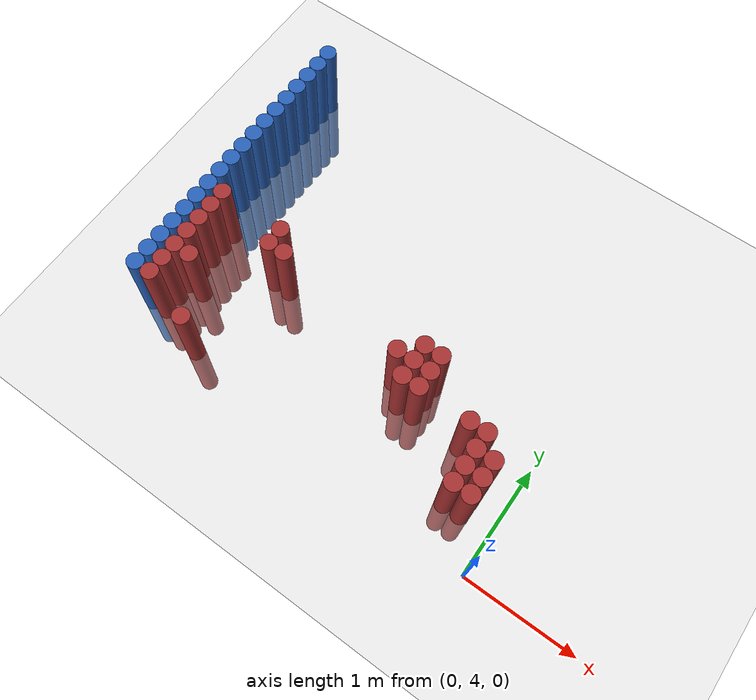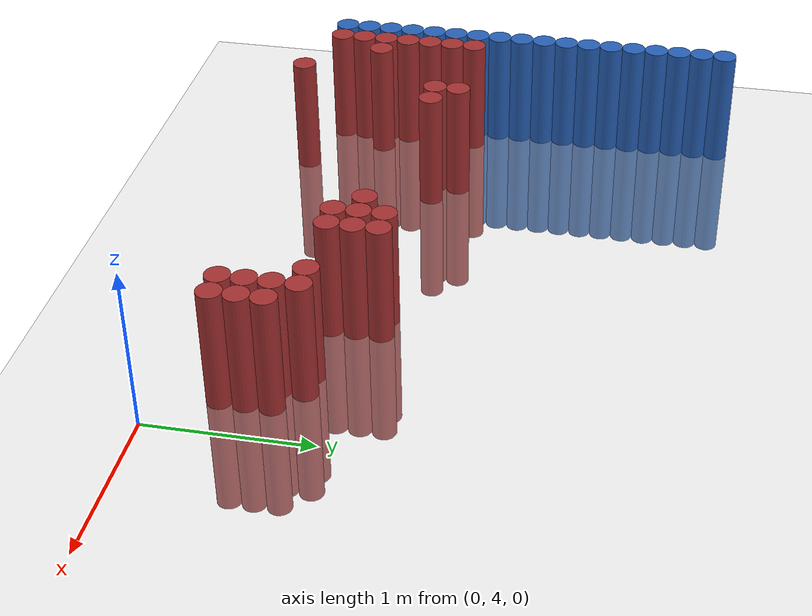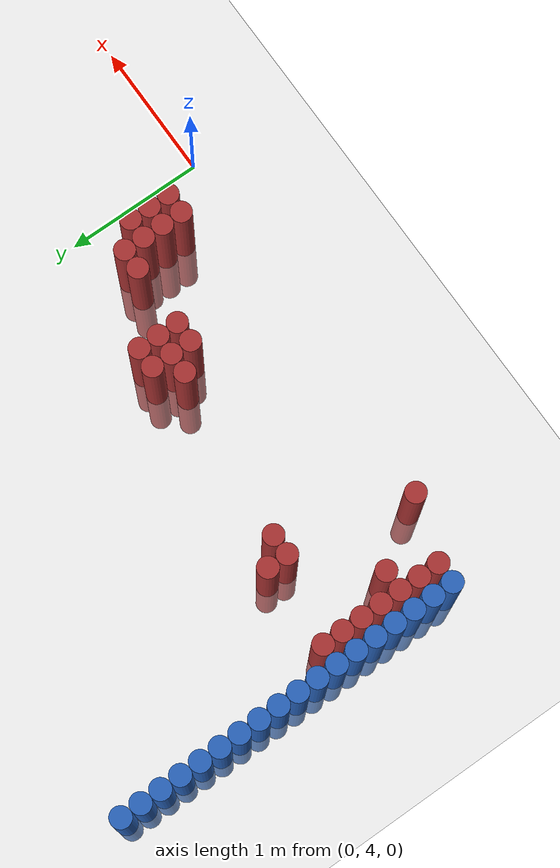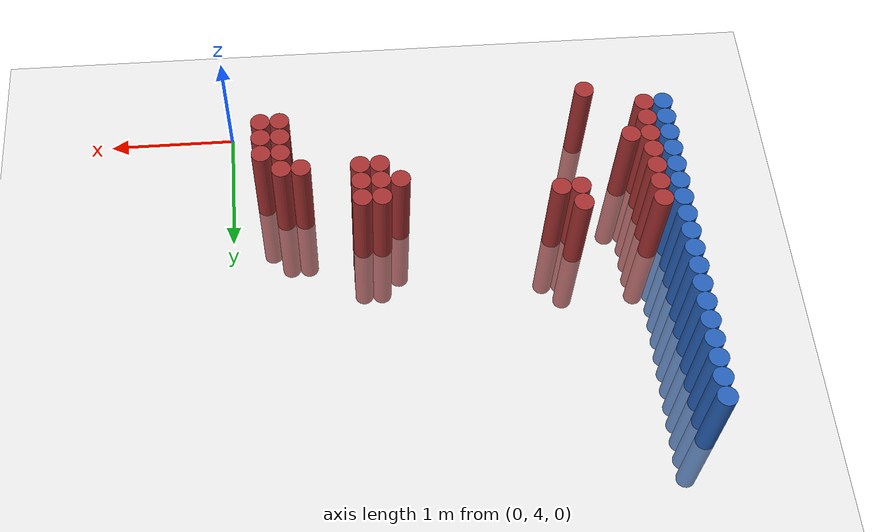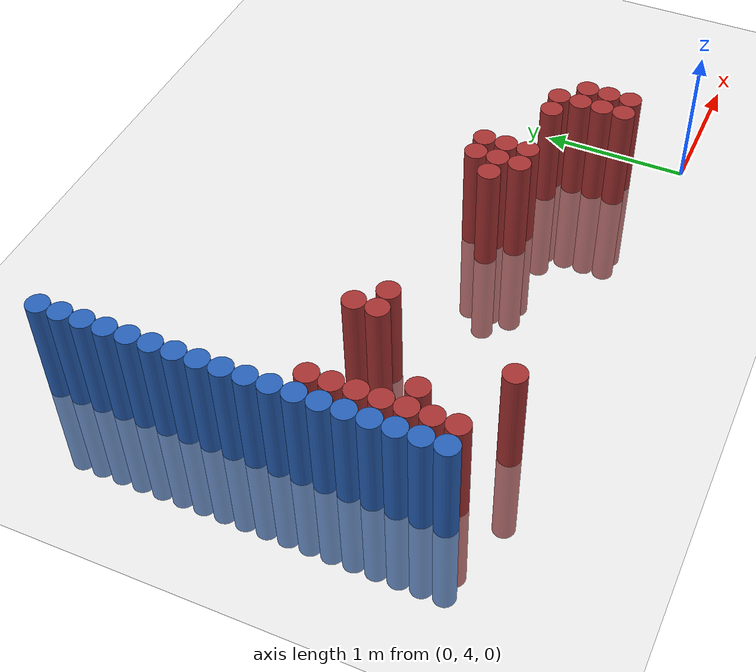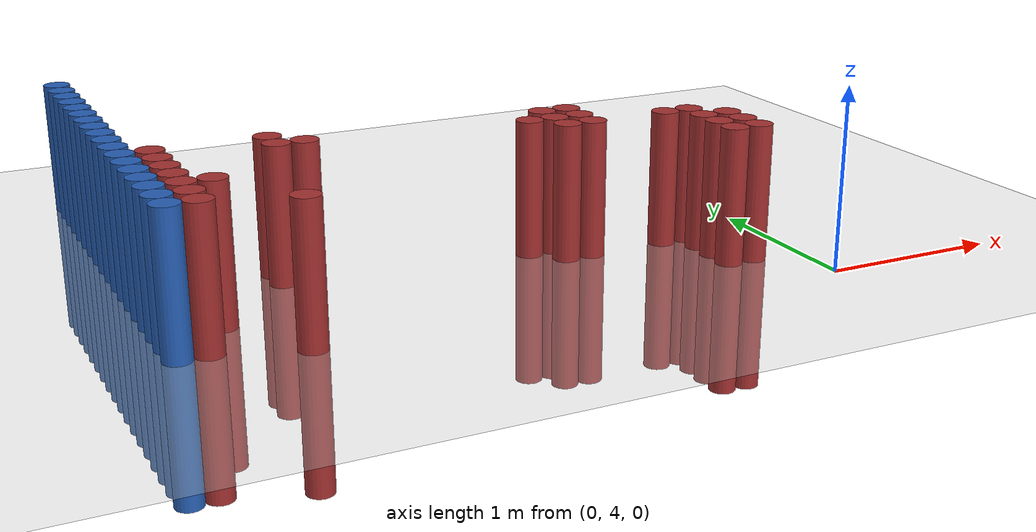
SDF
<sdf version="1.6">
 <world name="default">
  <model name="ground_plane">
   <static>1</static>
   <link name="link">
    <collision name="collision">
     <geometry><plane><normal>0 0 1</normal><size>100 100</size></plane></geometry>
     <surface><friction><ode><mu>100</mu><mu2>50</mu2></ode></friction></surface>
    </collision>
    <visual name="visual">
     <cast_shadows>0</cast_shadows>
     <geometry><plane><normal>0 0 1</normal><size>100 100</size></plane></geometry>
     <material>
      <script><uri>file://media/materials/scripts/gazebo.material</uri><name>Gazebo/Grey</name></script>
     </material>
    </visual>
   </link>
  </model>
  <model name="unit_cylinder_173">
   <static>1</static>
   <pose>-3.425000 4.375000 0.000000 0.000000 0.000000 0.000000</pose>
   <link name="link">
    <inertial>
     <mass>1</mass>
     <inertia><ixx>0.145833</ixx><ixy>0</ixy><ixz>0</ixz><iyy>0.145833</iyy><iyz>0</iyz><izz>0.125</izz></inertia>
    </inertial>
    <collision name="collision">
     <geometry><cylinder><radius>0.075000</radius><length>1.5</length></cylinder></geometry>
    </collision>
    <visual name="visual">
     <geometry><cylinder><radius>0.075000</radius><length>1.5</length></cylinder></geometry>
     <material>
      <ambient>0.152000 0.379000 0.720000 1</ambient>
      <diffuse>0.152000 0.379000 0.720000 1</diffuse>
     </material>
     <material>
      <script><name>Gazebo/Grey</name><uri>file://media/materials/scripts/gazebo.material</uri></script>
     </material>
    </visual>
   </link>
  </model>
  <model name="unit_cylinder_175">
   <static>1</static>
   <pose>-3.425000 4.525000 0.000000 0.000000 0.000000 0.000000</pose>
   <link name="link">
    <inertial>
     <mass>1</mass>
     <inertia><ixx>0.145833</ixx><ixy>0</ixy><ixz>0</ixz><iyy>0.145833</iyy><iyz>0</iyz><izz>0.125</izz></inertia>
    </inertial>
    <collision name="collision">
     <geometry><cylinder><radius>0.075000</radius><length>1.5</length></cylinder></geometry>
    </collision>
    <visual name="visual">
     <geometry><cylinder><radius>0.075000</radius><length>1.5</length></cylinder></geometry>
     <material>
      <ambient>0.152000 0.379000 0.720000 1</ambient>
      <diffuse>0.152000 0.379000 0.720000 1</diffuse>
     </material>
     <material>
      <script><name>Gazebo/Grey</name><uri>file://media/materials/scripts/gazebo.material</uri></script>
     </material>
    </visual>
   </link>
  </model>
  <model name="unit_cylinder_177">
   <static>1</static>
   <pose>-3.425000 4.675000 0.000000 0.000000 0.000000 0.000000</pose>
   <link name="link">
    <inertial>
     <mass>1</mass>
     <inertia><ixx>0.145833</ixx><ixy>0</ixy><ixz>0</ixz><iyy>0.145833</iyy><iyz>0</iyz><izz>0.125</izz></inertia>
    </inertial>
    <collision name="collision">
     <geometry><cylinder><radius>0.075000</radius><length>1.5</length></cylinder></geometry>
    </collision>
    <visual name="visual">
     <geometry><cylinder><radius>0.075000</radius><length>1.5</length></cylinder></geometry>
     <material>
      <ambient>0.152000 0.379000 0.720000 1</ambient>
      <diffuse>0.152000 0.379000 0.720000 1</diffuse>
     </material>
     <material>
      <script><name>Gazebo/Grey</name><uri>file://media/materials/scripts/gazebo.material</uri></script>
     </material>
    </visual>
   </link>
  </model>
  <model name="unit_cylinder_179">
   <static>1</static>
   <pose>-3.425000 4.825000 0.000000 0.000000 0.000000 0.000000</pose>
   <link name="link">
    <inertial>
     <mass>1</mass>
     <inertia><ixx>0.145833</ixx><ixy>0</ixy><ixz>0</ixz><iyy>0.145833</iyy><iyz>0</iyz><izz>0.125</izz></inertia>
    </inertial>
    <collision name="collision">
     <geometry><cylinder><radius>0.075000</radius><length>1.5</length></cylinder></geometry>
    </collision>
    <visual name="visual">
     <geometry><cylinder><radius>0.075000</radius><length>1.5</length></cylinder></geometry>
     <material>
      <ambient>0.152000 0.379000 0.720000 1</ambient>
      <diffuse>0.152000 0.379000 0.720000 1</diffuse>
     </material>
     <material>
      <script><name>Gazebo/Grey</name><uri>file://media/materials/scripts/gazebo.material</uri></script>
     </material>
    </visual>
   </link>
  </model>
  <model name="unit_cylinder_181">
   <static>1</static>
   <pose>-3.425000 4.975000 0.000000 0.000000 0.000000 0.000000</pose>
   <link name="link">
    <inertial>
     <mass>1</mass>
     <inertia><ixx>0.145833</ixx><ixy>0</ixy><ixz>0</ixz><iyy>0.145833</iyy><iyz>0</iyz><izz>0.125</izz></inertia>
    </inertial>
    <collision name="collision">
     <geometry><cylinder><radius>0.075000</radius><length>1.5</length></cylinder></geometry>
    </collision>
    <visual name="visual">
     <geometry><cylinder><radius>0.075000</radius><length>1.5</length></cylinder></geometry>
     <material>
      <ambient>0.152000 0.379000 0.720000 1</ambient>
      <diffuse>0.152000 0.379000 0.720000 1</diffuse>
     </material>
     <material>
      <script><name>Gazebo/Grey</name><uri>file://media/materials/scripts/gazebo.material</uri></script>
     </material>
    </visual>
   </link>
  </model>
  <model name="unit_cylinder_183">
   <static>1</static>
   <pose>-3.425000 5.125000 0.000000 0.000000 0.000000 0.000000</pose>
   <link name="link">
    <inertial>
     <mass>1</mass>
     <inertia><ixx>0.145833</ixx><ixy>0</ixy><ixz>0</ixz><iyy>0.145833</iyy><iyz>0</iyz><izz>0.125</izz></inertia>
    </inertial>
    <collision name="collision">
     <geometry><cylinder><radius>0.075000</radius><length>1.5</length></cylinder></geometry>
    </collision>
    <visual name="visual">
     <geometry><cylinder><radius>0.075000</radius><length>1.5</length></cylinder></geometry>
     <material>
      <ambient>0.152000 0.379000 0.720000 1</ambient>
      <diffuse>0.152000 0.379000 0.720000 1</diffuse>
     </material>
     <material>
      <script><name>Gazebo/Grey</name><uri>file://media/materials/scripts/gazebo.material</uri></script>
     </material>
    </visual>
   </link>
  </model>
  <model name="unit_cylinder_185">
   <static>1</static>
   <pose>-3.425000 5.275000 0.000000 0.000000 0.000000 0.000000</pose>
   <link name="link">
    <inertial>
     <mass>1</mass>
     <inertia><ixx>0.145833</ixx><ixy>0</ixy><ixz>0</ixz><iyy>0.145833</iyy><iyz>0</iyz><izz>0.125</izz></inertia>
    </inertial>
    <collision name="collision">
     <geometry><cylinder><radius>0.075000</radius><length>1.5</length></cylinder></geometry>
    </collision>
    <visual name="visual">
     <geometry><cylinder><radius>0.075000</radius><length>1.5</length></cylinder></geometry>
     <material>
      <ambient>0.152000 0.379000 0.720000 1</ambient>
      <diffuse>0.152000 0.379000 0.720000 1</diffuse>
     </material>
     <material>
      <script><name>Gazebo/Grey</name><uri>file://media/materials/scripts/gazebo.material</uri></script>
     </material>
    </visual>
   </link>
  </model>
  <model name="unit_cylinder_187">
   <static>1</static>
   <pose>-3.425000 5.425000 0.000000 0.000000 0.000000 0.000000</pose>
   <link name="link">
    <inertial>
     <mass>1</mass>
     <inertia><ixx>0.145833</ixx><ixy>0</ixy><ixz>0</ixz><iyy>0.145833</iyy><iyz>0</iyz><izz>0.125</izz></inertia>
    </inertial>
    <collision name="collision">
     <geometry><cylinder><radius>0.075000</radius><length>1.5</length></cylinder></geometry>
    </collision>
    <visual name="visual">
     <geometry><cylinder><radius>0.075000</radius><length>1.5</length></cylinder></geometry>
     <material>
      <ambient>0.152000 0.379000 0.720000 1</ambient>
      <diffuse>0.152000 0.379000 0.720000 1</diffuse>
     </material>
     <material>
      <script><name>Gazebo/Grey</name><uri>file://media/materials/scripts/gazebo.material</uri></script>
     </material>
    </visual>
   </link>
  </model>
  <model name="unit_cylinder_189">
   <static>1</static>
   <pose>-3.425000 5.575000 0.000000 0.000000 0.000000 0.000000</pose>
   <link name="link">
    <inertial>
     <mass>1</mass>
     <inertia><ixx>0.145833</ixx><ixy>0</ixy><ixz>0</ixz><iyy>0.145833</iyy><iyz>0</iyz><izz>0.125</izz></inertia>
    </inertial>
    <collision name="collision">
     <geometry><cylinder><radius>0.075000</radius><length>1.5</length></cylinder></geometry>
    </collision>
    <visual name="visual">
     <geometry><cylinder><radius>0.075000</radius><length>1.5</length></cylinder></geometry>
     <material>
      <ambient>0.152000 0.379000 0.720000 1</ambient>
      <diffuse>0.152000 0.379000 0.720000 1</diffuse>
     </material>
     <material>
      <script><name>Gazebo/Grey</name><uri>file://media/materials/scripts/gazebo.material</uri></script>
     </material>
    </visual>
   </link>
  </model>
  <model name="unit_cylinder_191">
   <static>1</static>
   <pose>-3.425000 5.725000 0.000000 0.000000 0.000000 0.000000</pose>
   <link name="link">
    <inertial>
     <mass>1</mass>
     <inertia><ixx>0.145833</ixx><ixy>0</ixy><ixz>0</ixz><iyy>0.145833</iyy><iyz>0</iyz><izz>0.125</izz></inertia>
    </inertial>
    <collision name="collision">
     <geometry><cylinder><radius>0.075000</radius><length>1.5</length></cylinder></geometry>
    </collision>
    <visual name="visual">
     <geometry><cylinder><radius>0.075000</radius><length>1.5</length></cylinder></geometry>
     <material>
      <ambient>0.152000 0.379000 0.720000 1</ambient>
      <diffuse>0.152000 0.379000 0.720000 1</diffuse>
     </material>
     <material>
      <script><name>Gazebo/Grey</name><uri>file://media/materials/scripts/gazebo.material</uri></script>
     </material>
    </visual>
   </link>
  </model>
  <model name="unit_cylinder_193">
   <static>1</static>
   <pose>-3.425000 5.875000 0.000000 0.000000 0.000000 0.000000</pose>
   <link name="link">
    <inertial>
     <mass>1</mass>
     <inertia><ixx>0.145833</ixx><ixy>0</ixy><ixz>0</ixz><iyy>0.145833</iyy><iyz>0</iyz><izz>0.125</izz></inertia>
    </inertial>
    <collision name="collision">
     <geometry><cylinder><radius>0.075000</radius><length>1.5</length></cylinder></geometry>
    </collision>
    <visual name="visual">
     <geometry><cylinder><radius>0.075000</radius><length>1.5</length></cylinder></geometry>
     <material>
      <ambient>0.152000 0.379000 0.720000 1</ambient>
      <diffuse>0.152000 0.379000 0.720000 1</diffuse>
     </material>
     <material>
      <script><name>Gazebo/Grey</name><uri>file://media/materials/scripts/gazebo.material</uri></script>
     </material>
    </visual>
   </link>
  </model>
  <model name="unit_cylinder_195">
   <static>1</static>
   <pose>-3.425000 6.025000 0.000000 0.000000 0.000000 0.000000</pose>
   <link name="link">
    <inertial>
     <mass>1</mass>
     <inertia><ixx>0.145833</ixx><ixy>0</ixy><ixz>0</ixz><iyy>0.145833</iyy><iyz>0</iyz><izz>0.125</izz></inertia>
    </inertial>
    <collision name="collision">
     <geometry><cylinder><radius>0.075000</radius><length>1.5</length></cylinder></geometry>
    </collision>
    <visual name="visual">
     <geometry><cylinder><radius>0.075000</radius><length>1.5</length></cylinder></geometry>
     <material>
      <ambient>0.152000 0.379000 0.720000 1</ambient>
      <diffuse>0.152000 0.379000 0.720000 1</diffuse>
     </material>
     <material>
      <script><name>Gazebo/Grey</name><uri>file://media/materials/scripts/gazebo.material</uri></script>
     </material>
    </visual>
   </link>
  </model>
  <model name="unit_cylinder_197">
   <static>1</static>
   <pose>-3.425000 6.175000 0.000000 0.000000 0.000000 0.000000</pose>
   <link name="link">
    <inertial>
     <mass>1</mass>
     <inertia><ixx>0.145833</ixx><ixy>0</ixy><ixz>0</ixz><iyy>0.145833</iyy><iyz>0</iyz><izz>0.125</izz></inertia>
    </inertial>
    <collision name="collision">
     <geometry><cylinder><radius>0.075000</radius><length>1.5</length></cylinder></geometry>
    </collision>
    <visual name="visual">
     <geometry><cylinder><radius>0.075000</radius><length>1.5</length></cylinder></geometry>
     <material>
      <ambient>0.152000 0.379000 0.720000 1</ambient>
      <diffuse>0.152000 0.379000 0.720000 1</diffuse>
     </material>
     <material>
      <script><name>Gazebo/Grey</name><uri>file://media/materials/scripts/gazebo.material</uri></script>
     </material>
    </visual>
   </link>
  </model>
  <model name="unit_cylinder_199">
   <static>1</static>
   <pose>-3.425000 6.325000 0.000000 0.000000 0.000000 0.000000</pose>
   <link name="link">
    <inertial>
     <mass>1</mass>
     <inertia><ixx>0.145833</ixx><ixy>0</ixy><ixz>0</ixz><iyy>0.145833</iyy><iyz>0</iyz><izz>0.125</izz></inertia>
    </inertial>
    <collision name="collision">
     <geometry><cylinder><radius>0.075000</radius><length>1.5</length></cylinder></geometry>
    </collision>
    <visual name="visual">
     <geometry><cylinder><radius>0.075000</radius><length>1.5</length></cylinder></geometry>
     <material>
      <ambient>0.152000 0.379000 0.720000 1</ambient>
      <diffuse>0.152000 0.379000 0.720000 1</diffuse>
     </material>
     <material>
      <script><name>Gazebo/Grey</name><uri>file://media/materials/scripts/gazebo.material</uri></script>
     </material>
    </visual>
   </link>
  </model>
  <model name="unit_cylinder_201">
   <static>1</static>
   <pose>-3.425000 6.475000 0.000000 0.000000 0.000000 0.000000</pose>
   <link name="link">
    <inertial>
     <mass>1</mass>
     <inertia><ixx>0.145833</ixx><ixy>0</ixy><ixz>0</ixz><iyy>0.145833</iyy><iyz>0</iyz><izz>0.125</izz></inertia>
    </inertial>
    <collision name="collision">
     <geometry><cylinder><radius>0.075000</radius><length>1.5</length></cylinder></geometry>
    </collision>
    <visual name="visual">
     <geometry><cylinder><radius>0.075000</radius><length>1.5</length></cylinder></geometry>
     <material>
      <ambient>0.152000 0.379000 0.720000 1</ambient>
      <diffuse>0.152000 0.379000 0.720000 1</diffuse>
     </material>
     <material>
      <script><name>Gazebo/Grey</name><uri>file://media/materials/scripts/gazebo.material</uri></script>
     </material>
    </visual>
   </link>
  </model>
  <model name="unit_cylinder_203">
   <static>1</static>
   <pose>-3.425000 6.625000 0.000000 0.000000 0.000000 0.000000</pose>
   <link name="link">
    <inertial>
     <mass>1</mass>
     <inertia><ixx>0.145833</ixx><ixy>0</ixy><ixz>0</ixz><iyy>0.145833</iyy><iyz>0</iyz><izz>0.125</izz></inertia>
    </inertial>
    <collision name="collision">
     <geometry><cylinder><radius>0.075000</radius><length>1.5</length></cylinder></geometry>
    </collision>
    <visual name="visual">
     <geometry><cylinder><radius>0.075000</radius><length>1.5</length></cylinder></geometry>
     <material>
      <ambient>0.152000 0.379000 0.720000 1</ambient>
      <diffuse>0.152000 0.379000 0.720000 1</diffuse>
     </material>
     <material>
      <script><name>Gazebo/Grey</name><uri>file://media/materials/scripts/gazebo.material</uri></script>
     </material>
    </visual>
   </link>
  </model>
  <model name="unit_cylinder_205">
   <static>1</static>
   <pose>-3.425000 6.775000 0.000000 0.000000 0.000000 0.000000</pose>
   <link name="link">
    <inertial>
     <mass>1</mass>
     <inertia><ixx>0.145833</ixx><ixy>0</ixy><ixz>0</ixz><iyy>0.145833</iyy><iyz>0</iyz><izz>0.125</izz></inertia>
    </inertial>
    <collision name="collision">
     <geometry><cylinder><radius>0.075000</radius><length>1.5</length></cylinder></geometry>
    </collision>
    <visual name="visual">
     <geometry><cylinder><radius>0.075000</radius><length>1.5</length></cylinder></geometry>
     <material>
      <ambient>0.152000 0.379000 0.720000 1</ambient>
      <diffuse>0.152000 0.379000 0.720000 1</diffuse>
     </material>
     <material>
      <script><name>Gazebo/Grey</name><uri>file://media/materials/scripts/gazebo.material</uri></script>
     </material>
    </visual>
   </link>
  </model>
  <model name="unit_cylinder_207">
   <static>1</static>
   <pose>-3.425000 6.925000 0.000000 0.000000 0.000000 0.000000</pose>
   <link name="link">
    <inertial>
     <mass>1</mass>
     <inertia><ixx>0.145833</ixx><ixy>0</ixy><ixz>0</ixz><iyy>0.145833</iyy><iyz>0</iyz><izz>0.125</izz></inertia>
    </inertial>
    <collision name="collision">
     <geometry><cylinder><radius>0.075000</radius><length>1.5</length></cylinder></geometry>
    </collision>
    <visual name="visual">
     <geometry><cylinder><radius>0.075000</radius><length>1.5</length></cylinder></geometry>
     <material>
      <ambient>0.152000 0.379000 0.720000 1</ambient>
      <diffuse>0.152000 0.379000 0.720000 1</diffuse>
     </material>
     <material>
      <script><name>Gazebo/Grey</name><uri>file://media/materials/scripts/gazebo.material</uri></script>
     </material>
    </visual>
   </link>
  </model>
  <model name="unit_cylinder_250">
   <static>1</static>
   <pose>-3.425000 4.375000 0.000000 0.000000 0.000000 0.000000</pose>
   <link name="link">
    <inertial>
     <mass>1</mass>
     <inertia><ixx>0.145833</ixx><ixy>0</ixy><ixz>0</ixz><iyy>0.145833</iyy><iyz>0</iyz><izz>0.125</izz></inertia>
    </inertial>
    <collision name="collision">
     <geometry><cylinder><radius>0.075000</radius><length>1.5</length></cylinder></geometry>
    </collision>
    <visual name="visual">
     <geometry><cylinder><radius>0.075000</radius><length>1.5</length></cylinder></geometry>
     <material>
      <ambient>0.152000 0.379000 0.720000 1</ambient>
      <diffuse>0.152000 0.379000 0.720000 1</diffuse>
     </material>
     <material>
      <script><name>Gazebo/Grey</name><uri>file://media/materials/scripts/gazebo.material</uri></script>
     </material>
    </visual>
   </link>
  </model>
  <model name="unit_cylinder_251">
   <static>1</static>
   <pose>-3.425000 4.525000 0.000000 0.000000 0.000000 0.000000</pose>
   <link name="link">
    <inertial>
     <mass>1</mass>
     <inertia><ixx>0.145833</ixx><ixy>0</ixy><ixz>0</ixz><iyy>0.145833</iyy><iyz>0</iyz><izz>0.125</izz></inertia>
    </inertial>
    <collision name="collision">
     <geometry><cylinder><radius>0.075000</radius><length>1.5</length></cylinder></geometry>
    </collision>
    <visual name="visual">
     <geometry><cylinder><radius>0.075000</radius><length>1.5</length></cylinder></geometry>
     <material>
      <ambient>0.152000 0.379000 0.720000 1</ambient>
      <diffuse>0.152000 0.379000 0.720000 1</diffuse>
     </material>
     <material>
      <script><name>Gazebo/Grey</name><uri>file://media/materials/scripts/gazebo.material</uri></script>
     </material>
    </visual>
   </link>
  </model>
  <model name="unit_cylinder_252">
   <static>1</static>
   <pose>-3.425000 4.675000 0.000000 0.000000 0.000000 0.000000</pose>
   <link name="link">
    <inertial>
     <mass>1</mass>
     <inertia><ixx>0.145833</ixx><ixy>0</ixy><ixz>0</ixz><iyy>0.145833</iyy><iyz>0</iyz><izz>0.125</izz></inertia>
    </inertial>
    <collision name="collision">
     <geometry><cylinder><radius>0.075000</radius><length>1.5</length></cylinder></geometry>
    </collision>
    <visual name="visual">
     <geometry><cylinder><radius>0.075000</radius><length>1.5</length></cylinder></geometry>
     <material>
      <ambient>0.152000 0.379000 0.720000 1</ambient>
      <diffuse>0.152000 0.379000 0.720000 1</diffuse>
     </material>
     <material>
      <script><name>Gazebo/Grey</name><uri>file://media/materials/scripts/gazebo.material</uri></script>
     </material>
    </visual>
   </link>
  </model>
  <model name="unit_cylinder_253">
   <static>1</static>
   <pose>-3.425000 4.825000 0.000000 0.000000 0.000000 0.000000</pose>
   <link name="link">
    <inertial>
     <mass>1</mass>
     <inertia><ixx>0.145833</ixx><ixy>0</ixy><ixz>0</ixz><iyy>0.145833</iyy><iyz>0</iyz><izz>0.125</izz></inertia>
    </inertial>
    <collision name="collision">
     <geometry><cylinder><radius>0.075000</radius><length>1.5</length></cylinder></geometry>
    </collision>
    <visual name="visual">
     <geometry><cylinder><radius>0.075000</radius><length>1.5</length></cylinder></geometry>
     <material>
      <ambient>0.152000 0.379000 0.720000 1</ambient>
      <diffuse>0.152000 0.379000 0.720000 1</diffuse>
     </material>
     <material>
      <script><name>Gazebo/Grey</name><uri>file://media/materials/scripts/gazebo.material</uri></script>
     </material>
    </visual>
   </link>
  </model>
  <model name="unit_cylinder_254">
   <static>1</static>
   <pose>-3.425000 4.975000 0.000000 0.000000 0.000000 0.000000</pose>
   <link name="link">
    <inertial>
     <mass>1</mass>
     <inertia><ixx>0.145833</ixx><ixy>0</ixy><ixz>0</ixz><iyy>0.145833</iyy><iyz>0</iyz><izz>0.125</izz></inertia>
    </inertial>
    <collision name="collision">
     <geometry><cylinder><radius>0.075000</radius><length>1.5</length></cylinder></geometry>
    </collision>
    <visual name="visual">
     <geometry><cylinder><radius>0.075000</radius><length>1.5</length></cylinder></geometry>
     <material>
      <ambient>0.152000 0.379000 0.720000 1</ambient>
      <diffuse>0.152000 0.379000 0.720000 1</diffuse>
     </material>
     <material>
      <script><name>Gazebo/Grey</name><uri>file://media/materials/scripts/gazebo.material</uri></script>
     </material>
    </visual>
   </link>
  </model>
  <model name="unit_cylinder_255">
   <static>1</static>
   <pose>-3.425000 5.125000 0.000000 0.000000 0.000000 0.000000</pose>
   <link name="link">
    <inertial>
     <mass>1</mass>
     <inertia><ixx>0.145833</ixx><ixy>0</ixy><ixz>0</ixz><iyy>0.145833</iyy><iyz>0</iyz><izz>0.125</izz></inertia>
    </inertial>
    <collision name="collision">
     <geometry><cylinder><radius>0.075000</radius><length>1.5</length></cylinder></geometry>
    </collision>
    <visual name="visual">
     <geometry><cylinder><radius>0.075000</radius><length>1.5</length></cylinder></geometry>
     <material>
      <ambient>0.152000 0.379000 0.720000 1</ambient>
      <diffuse>0.152000 0.379000 0.720000 1</diffuse>
     </material>
     <material>
      <script><name>Gazebo/Grey</name><uri>file://media/materials/scripts/gazebo.material</uri></script>
     </material>
    </visual>
   </link>
  </model>
  <model name="unit_cylinder_256">
   <static>1</static>
   <pose>-3.425000 5.275000 0.000000 0.000000 0.000000 0.000000</pose>
   <link name="link">
    <inertial>
     <mass>1</mass>
     <inertia><ixx>0.145833</ixx><ixy>0</ixy><ixz>0</ixz><iyy>0.145833</iyy><iyz>0</iyz><izz>0.125</izz></inertia>
    </inertial>
    <collision name="collision">
     <geometry><cylinder><radius>0.075000</radius><length>1.5</length></cylinder></geometry>
    </collision>
    <visual name="visual">
     <geometry><cylinder><radius>0.075000</radius><length>1.5</length></cylinder></geometry>
     <material>
      <ambient>0.152000 0.379000 0.720000 1</ambient>
      <diffuse>0.152000 0.379000 0.720000 1</diffuse>
     </material>
     <material>
      <script><name>Gazebo/Grey</name><uri>file://media/materials/scripts/gazebo.material</uri></script>
     </material>
    </visual>
   </link>
  </model>
  <model name="unit_cylinder_257">
   <static>1</static>
   <pose>-3.425000 5.425000 0.000000 0.000000 0.000000 0.000000</pose>
   <link name="link">
    <inertial>
     <mass>1</mass>
     <inertia><ixx>0.145833</ixx><ixy>0</ixy><ixz>0</ixz><iyy>0.145833</iyy><iyz>0</iyz><izz>0.125</izz></inertia>
    </inertial>
    <collision name="collision">
     <geometry><cylinder><radius>0.075000</radius><length>1.5</length></cylinder></geometry>
    </collision>
    <visual name="visual">
     <geometry><cylinder><radius>0.075000</radius><length>1.5</length></cylinder></geometry>
     <material>
      <ambient>0.152000 0.379000 0.720000 1</ambient>
      <diffuse>0.152000 0.379000 0.720000 1</diffuse>
     </material>
     <material>
      <script><name>Gazebo/Grey</name><uri>file://media/materials/scripts/gazebo.material</uri></script>
     </material>
    </visual>
   </link>
  </model>
  <model name="unit_cylinder_280">
   <static>1</static>
   <pose>-3.275000 4.375000 0.000000 0.000000 0.000000 0.000000</pose>
   <link name="link">
    <inertial>
     <mass>1</mass>
     <inertia><ixx>0.145833</ixx><ixy>0</ixy><ixz>0</ixz><iyy>0.145833</iyy><iyz>0</iyz><izz>0.125</izz></inertia>
    </inertial>
    <collision name="collision">
     <geometry><cylinder><radius>0.075000</radius><length>1.5</length></cylinder></geometry>
    </collision>
    <visual name="visual">
     <geometry><cylinder><radius>0.075000</radius><length>1.5</length></cylinder></geometry>
     <material>
      <ambient>0.648000 0.192000 0.192000 1</ambient>
      <diffuse>0.648000 0.192000 0.192000 1</diffuse>
     </material>
     <material>
      <script><name>Gazebo/Grey</name><uri>file://media/materials/scripts/gazebo.material</uri></script>
     </material>
    </visual>
   </link>
  </model>
  <model name="unit_cylinder_281">
   <static>1</static>
   <pose>-3.275000 4.525000 0.000000 0.000000 0.000000 0.000000</pose>
   <link name="link">
    <inertial>
     <mass>1</mass>
     <inertia><ixx>0.145833</ixx><ixy>0</ixy><ixz>0</ixz><iyy>0.145833</iyy><iyz>0</iyz><izz>0.125</izz></inertia>
    </inertial>
    <collision name="collision">
     <geometry><cylinder><radius>0.075000</radius><length>1.5</length></cylinder></geometry>
    </collision>
    <visual name="visual">
     <geometry><cylinder><radius>0.075000</radius><length>1.5</length></cylinder></geometry>
     <material>
      <ambient>0.648000 0.192000 0.192000 1</ambient>
      <diffuse>0.648000 0.192000 0.192000 1</diffuse>
     </material>
     <material>
      <script><name>Gazebo/Grey</name><uri>file://media/materials/scripts/gazebo.material</uri></script>
     </material>
    </visual>
   </link>
  </model>
  <model name="unit_cylinder_282">
   <static>1</static>
   <pose>-3.275000 4.675000 0.000000 0.000000 0.000000 0.000000</pose>
   <link name="link">
    <inertial>
     <mass>1</mass>
     <inertia><ixx>0.145833</ixx><ixy>0</ixy><ixz>0</ixz><iyy>0.145833</iyy><iyz>0</iyz><izz>0.125</izz></inertia>
    </inertial>
    <collision name="collision">
     <geometry><cylinder><radius>0.075000</radius><length>1.5</length></cylinder></geometry>
    </collision>
    <visual name="visual">
     <geometry><cylinder><radius>0.075000</radius><length>1.5</length></cylinder></geometry>
     <material>
      <ambient>0.648000 0.192000 0.192000 1</ambient>
      <diffuse>0.648000 0.192000 0.192000 1</diffuse>
     </material>
     <material>
      <script><name>Gazebo/Grey</name><uri>file://media/materials/scripts/gazebo.material</uri></script>
     </material>
    </visual>
   </link>
  </model>
  <model name="unit_cylinder_283">
   <static>1</static>
   <pose>-3.275000 4.825000 0.000000 0.000000 0.000000 0.000000</pose>
   <link name="link">
    <inertial>
     <mass>1</mass>
     <inertia><ixx>0.145833</ixx><ixy>0</ixy><ixz>0</ixz><iyy>0.145833</iyy><iyz>0</iyz><izz>0.125</izz></inertia>
    </inertial>
    <collision name="collision">
     <geometry><cylinder><radius>0.075000</radius><length>1.5</length></cylinder></geometry>
    </collision>
    <visual name="visual">
     <geometry><cylinder><radius>0.075000</radius><length>1.5</length></cylinder></geometry>
     <material>
      <ambient>0.648000 0.192000 0.192000 1</ambient>
      <diffuse>0.648000 0.192000 0.192000 1</diffuse>
     </material>
     <material>
      <script><name>Gazebo/Grey</name><uri>file://media/materials/scripts/gazebo.material</uri></script>
     </material>
    </visual>
   </link>
  </model>
  <model name="unit_cylinder_284">
   <static>1</static>
   <pose>-3.275000 4.975000 0.000000 0.000000 0.000000 0.000000</pose>
   <link name="link">
    <inertial>
     <mass>1</mass>
     <inertia><ixx>0.145833</ixx><ixy>0</ixy><ixz>0</ixz><iyy>0.145833</iyy><iyz>0</iyz><izz>0.125</izz></inertia>
    </inertial>
    <collision name="collision">
     <geometry><cylinder><radius>0.075000</radius><length>1.5</length></cylinder></geometry>
    </collision>
    <visual name="visual">
     <geometry><cylinder><radius>0.075000</radius><length>1.5</length></cylinder></geometry>
     <material>
      <ambient>0.648000 0.192000 0.192000 1</ambient>
      <diffuse>0.648000 0.192000 0.192000 1</diffuse>
     </material>
     <material>
      <script><name>Gazebo/Grey</name><uri>file://media/materials/scripts/gazebo.material</uri></script>
     </material>
    </visual>
   </link>
  </model>
  <model name="unit_cylinder_285">
   <static>1</static>
   <pose>-3.275000 5.125000 0.000000 0.000000 0.000000 0.000000</pose>
   <link name="link">
    <inertial>
     <mass>1</mass>
     <inertia><ixx>0.145833</ixx><ixy>0</ixy><ixz>0</ixz><iyy>0.145833</iyy><iyz>0</iyz><izz>0.125</izz></inertia>
    </inertial>
    <collision name="collision">
     <geometry><cylinder><radius>0.075000</radius><length>1.5</length></cylinder></geometry>
    </collision>
    <visual name="visual">
     <geometry><cylinder><radius>0.075000</radius><length>1.5</length></cylinder></geometry>
     <material>
      <ambient>0.648000 0.192000 0.192000 1</ambient>
      <diffuse>0.648000 0.192000 0.192000 1</diffuse>
     </material>
     <material>
      <script><name>Gazebo/Grey</name><uri>file://media/materials/scripts/gazebo.material</uri></script>
     </material>
    </visual>
   </link>
  </model>
  <model name="unit_cylinder_286">
   <static>1</static>
   <pose>-3.275000 5.275000 0.000000 0.000000 0.000000 0.000000</pose>
   <link name="link">
    <inertial>
     <mass>1</mass>
     <inertia><ixx>0.145833</ixx><ixy>0</ixy><ixz>0</ixz><iyy>0.145833</iyy><iyz>0</iyz><izz>0.125</izz></inertia>
    </inertial>
    <collision name="collision">
     <geometry><cylinder><radius>0.075000</radius><length>1.5</length></cylinder></geometry>
    </collision>
    <visual name="visual">
     <geometry><cylinder><radius>0.075000</radius><length>1.5</length></cylinder></geometry>
     <material>
      <ambient>0.648000 0.192000 0.192000 1</ambient>
      <diffuse>0.648000 0.192000 0.192000 1</diffuse>
     </material>
     <material>
      <script><name>Gazebo/Grey</name><uri>file://media/materials/scripts/gazebo.material</uri></script>
     </material>
    </visual>
   </link>
  </model>
  <model name="unit_cylinder_297">
   <static>1</static>
   <pose>-3.125000 4.675000 0.000000 0.000000 0.000000 0.000000</pose>
   <link name="link">
    <inertial>
     <mass>1</mass>
     <inertia><ixx>0.145833</ixx><ixy>0</ixy><ixz>0</ixz><iyy>0.145833</iyy><iyz>0</iyz><izz>0.125</izz></inertia>
    </inertial>
    <collision name="collision">
     <geometry><cylinder><radius>0.075000</radius><length>1.5</length></cylinder></geometry>
    </collision>
    <visual name="visual">
     <geometry><cylinder><radius>0.075000</radius><length>1.5</length></cylinder></geometry>
     <material>
      <ambient>0.648000 0.192000 0.192000 1</ambient>
      <diffuse>0.648000 0.192000 0.192000 1</diffuse>
     </material>
     <material>
      <script><name>Gazebo/Grey</name><uri>file://media/materials/scripts/gazebo.material</uri></script>
     </material>
    </visual>
   </link>
  </model>
  <model name="unit_cylinder_312">
   <static>1</static>
   <pose>-2.825000 4.225000 0.000000 0.000000 0.000000 0.000000</pose>
   <link name="link">
    <inertial>
     <mass>1</mass>
     <inertia><ixx>0.145833</ixx><ixy>0</ixy><ixz>0</ixz><iyy>0.145833</iyy><iyz>0</iyz><izz>0.125</izz></inertia>
    </inertial>
    <collision name="collision">
     <geometry><cylinder><radius>0.075000</radius><length>1.5</length></cylinder></geometry>
    </collision>
    <visual name="visual">
     <geometry><cylinder><radius>0.075000</radius><length>1.5</length></cylinder></geometry>
     <material>
      <ambient>0.648000 0.192000 0.192000 1</ambient>
      <diffuse>0.648000 0.192000 0.192000 1</diffuse>
     </material>
     <material>
      <script><name>Gazebo/Grey</name><uri>file://media/materials/scripts/gazebo.material</uri></script>
     </material>
    </visual>
   </link>
  </model>
  <model name="unit_cylinder_322">
   <static>1</static>
   <pose>-2.675000 5.125000 0.000000 0.000000 0.000000 0.000000</pose>
   <link name="link">
    <inertial>
     <mass>1</mass>
     <inertia><ixx>0.145833</ixx><ixy>0</ixy><ixz>0</ixz><iyy>0.145833</iyy><iyz>0</iyz><izz>0.125</izz></inertia>
    </inertial>
    <collision name="collision">
     <geometry><cylinder><radius>0.075000</radius><length>1.5</length></cylinder></geometry>
    </collision>
    <visual name="visual">
     <geometry><cylinder><radius>0.075000</radius><length>1.5</length></cylinder></geometry>
     <material>
      <ambient>0.648000 0.192000 0.192000 1</ambient>
      <diffuse>0.648000 0.192000 0.192000 1</diffuse>
     </material>
     <material>
      <script><name>Gazebo/Grey</name><uri>file://media/materials/scripts/gazebo.material</uri></script>
     </material>
    </visual>
   </link>
  </model>
  <model name="unit_cylinder_323">
   <static>1</static>
   <pose>-2.675000 5.275000 0.000000 0.000000 0.000000 0.000000</pose>
   <link name="link">
    <inertial>
     <mass>1</mass>
     <inertia><ixx>0.145833</ixx><ixy>0</ixy><ixz>0</ixz><iyy>0.145833</iyy><iyz>0</iyz><izz>0.125</izz></inertia>
    </inertial>
    <collision name="collision">
     <geometry><cylinder><radius>0.075000</radius><length>1.5</length></cylinder></geometry>
    </collision>
    <visual name="visual">
     <geometry><cylinder><radius>0.075000</radius><length>1.5</length></cylinder></geometry>
     <material>
      <ambient>0.648000 0.192000 0.192000 1</ambient>
      <diffuse>0.648000 0.192000 0.192000 1</diffuse>
     </material>
     <material>
      <script><name>Gazebo/Grey</name><uri>file://media/materials/scripts/gazebo.material</uri></script>
     </material>
    </visual>
   </link>
  </model>
  <model name="unit_cylinder_332">
   <static>1</static>
   <pose>-2.525000 5.125000 0.000000 0.000000 0.000000 0.000000</pose>
   <link name="link">
    <inertial>
     <mass>1</mass>
     <inertia><ixx>0.145833</ixx><ixy>0</ixy><ixz>0</ixz><iyy>0.145833</iyy><iyz>0</iyz><izz>0.125</izz></inertia>
    </inertial>
    <collision name="collision">
     <geometry><cylinder><radius>0.075000</radius><length>1.5</length></cylinder></geometry>
    </collision>
    <visual name="visual">
     <geometry><cylinder><radius>0.075000</radius><length>1.5</length></cylinder></geometry>
     <material>
      <ambient>0.648000 0.192000 0.192000 1</ambient>
      <diffuse>0.648000 0.192000 0.192000 1</diffuse>
     </material>
     <material>
      <script><name>Gazebo/Grey</name><uri>file://media/materials/scripts/gazebo.material</uri></script>
     </material>
    </visual>
   </link>
  </model>
  <model name="unit_cylinder_353">
   <static>1</static>
   <pose>-1.325000 4.975000 0.000000 0.000000 0.000000 0.000000</pose>
   <link name="link">
    <inertial>
     <mass>1</mass>
     <inertia><ixx>0.145833</ixx><ixy>0</ixy><ixz>0</ixz><iyy>0.145833</iyy><iyz>0</iyz><izz>0.125</izz></inertia>
    </inertial>
    <collision name="collision">
     <geometry><cylinder><radius>0.075000</radius><length>1.5</length></cylinder></geometry>
    </collision>
    <visual name="visual">
     <geometry><cylinder><radius>0.075000</radius><length>1.5</length></cylinder></geometry>
     <material>
      <ambient>0.648000 0.192000 0.192000 1</ambient>
      <diffuse>0.648000 0.192000 0.192000 1</diffuse>
     </material>
     <material>
      <script><name>Gazebo/Grey</name><uri>file://media/materials/scripts/gazebo.material</uri></script>
     </material>
    </visual>
   </link>
  </model>
  <model name="unit_cylinder_354">
   <static>1</static>
   <pose>-1.175000 4.825000 0.000000 0.000000 0.000000 0.000000</pose>
   <link name="link">
    <inertial>
     <mass>1</mass>
     <inertia><ixx>0.145833</ixx><ixy>0</ixy><ixz>0</ixz><iyy>0.145833</iyy><iyz>0</iyz><izz>0.125</izz></inertia>
    </inertial>
    <collision name="collision">
     <geometry><cylinder><radius>0.075000</radius><length>1.5</length></cylinder></geometry>
    </collision>
    <visual name="visual">
     <geometry><cylinder><radius>0.075000</radius><length>1.5</length></cylinder></geometry>
     <material>
      <ambient>0.648000 0.192000 0.192000 1</ambient>
      <diffuse>0.648000 0.192000 0.192000 1</diffuse>
     </material>
     <material>
      <script><name>Gazebo/Grey</name><uri>file://media/materials/scripts/gazebo.material</uri></script>
     </material>
    </visual>
   </link>
  </model>
  <model name="unit_cylinder_355">
   <static>1</static>
   <pose>-1.175000 4.975000 0.000000 0.000000 0.000000 0.000000</pose>
   <link name="link">
    <inertial>
     <mass>1</mass>
     <inertia><ixx>0.145833</ixx><ixy>0</ixy><ixz>0</ixz><iyy>0.145833</iyy><iyz>0</iyz><izz>0.125</izz></inertia>
    </inertial>
    <collision name="collision">
     <geometry><cylinder><radius>0.075000</radius><length>1.5</length></cylinder></geometry>
    </collision>
    <visual name="visual">
     <geometry><cylinder><radius>0.075000</radius><length>1.5</length></cylinder></geometry>
     <material>
      <ambient>0.648000 0.192000 0.192000 1</ambient>
      <diffuse>0.648000 0.192000 0.192000 1</diffuse>
     </material>
     <material>
      <script><name>Gazebo/Grey</name><uri>file://media/materials/scripts/gazebo.material</uri></script>
     </material>
    </visual>
   </link>
  </model>
  <model name="unit_cylinder_356">
   <static>1</static>
   <pose>-1.175000 5.125000 0.000000 0.000000 0.000000 0.000000</pose>
   <link name="link">
    <inertial>
     <mass>1</mass>
     <inertia><ixx>0.145833</ixx><ixy>0</ixy><ixz>0</ixz><iyy>0.145833</iyy><iyz>0</iyz><izz>0.125</izz></inertia>
    </inertial>
    <collision name="collision">
     <geometry><cylinder><radius>0.075000</radius><length>1.5</length></cylinder></geometry>
    </collision>
    <visual name="visual">
     <geometry><cylinder><radius>0.075000</radius><length>1.5</length></cylinder></geometry>
     <material>
      <ambient>0.648000 0.192000 0.192000 1</ambient>
      <diffuse>0.648000 0.192000 0.192000 1</diffuse>
     </material>
     <material>
      <script><name>Gazebo/Grey</name><uri>file://media/materials/scripts/gazebo.material</uri></script>
     </material>
    </visual>
   </link>
  </model>
  <model name="unit_cylinder_359">
   <static>1</static>
   <pose>-1.025000 4.825000 0.000000 0.000000 0.000000 0.000000</pose>
   <link name="link">
    <inertial>
     <mass>1</mass>
     <inertia><ixx>0.145833</ixx><ixy>0</ixy><ixz>0</ixz><iyy>0.145833</iyy><iyz>0</iyz><izz>0.125</izz></inertia>
    </inertial>
    <collision name="collision">
     <geometry><cylinder><radius>0.075000</radius><length>1.5</length></cylinder></geometry>
    </collision>
    <visual name="visual">
     <geometry><cylinder><radius>0.075000</radius><length>1.5</length></cylinder></geometry>
     <material>
      <ambient>0.648000 0.192000 0.192000 1</ambient>
      <diffuse>0.648000 0.192000 0.192000 1</diffuse>
     </material>
     <material>
      <script><name>Gazebo/Grey</name><uri>file://media/materials/scripts/gazebo.material</uri></script>
     </material>
    </visual>
   </link>
  </model>
  <model name="unit_cylinder_360">
   <static>1</static>
   <pose>-1.025000 4.975000 0.000000 0.000000 0.000000 0.000000</pose>
   <link name="link">
    <inertial>
     <mass>1</mass>
     <inertia><ixx>0.145833</ixx><ixy>0</ixy><ixz>0</ixz><iyy>0.145833</iyy><iyz>0</iyz><izz>0.125</izz></inertia>
    </inertial>
    <collision name="collision">
     <geometry><cylinder><radius>0.075000</radius><length>1.5</length></cylinder></geometry>
    </collision>
    <visual name="visual">
     <geometry><cylinder><radius>0.075000</radius><length>1.5</length></cylinder></geometry>
     <material>
      <ambient>0.648000 0.192000 0.192000 1</ambient>
      <diffuse>0.648000 0.192000 0.192000 1</diffuse>
     </material>
     <material>
      <script><name>Gazebo/Grey</name><uri>file://media/materials/scripts/gazebo.material</uri></script>
     </material>
    </visual>
   </link>
  </model>
  <model name="unit_cylinder_361">
   <static>1</static>
   <pose>-1.025000 5.125000 0.000000 0.000000 0.000000 0.000000</pose>
   <link name="link">
    <inertial>
     <mass>1</mass>
     <inertia><ixx>0.145833</ixx><ixy>0</ixy><ixz>0</ixz><iyy>0.145833</iyy><iyz>0</iyz><izz>0.125</izz></inertia>
    </inertial>
    <collision name="collision">
     <geometry><cylinder><radius>0.075000</radius><length>1.5</length></cylinder></geometry>
    </collision>
    <visual name="visual">
     <geometry><cylinder><radius>0.075000</radius><length>1.5</length></cylinder></geometry>
     <material>
      <ambient>0.648000 0.192000 0.192000 1</ambient>
      <diffuse>0.648000 0.192000 0.192000 1</diffuse>
     </material>
     <material>
      <script><name>Gazebo/Grey</name><uri>file://media/materials/scripts/gazebo.material</uri></script>
     </material>
    </visual>
   </link>
  </model>
  <model name="unit_cylinder_366">
   <static>1</static>
   <pose>-0.575000 4.825000 0.000000 0.000000 0.000000 0.000000</pose>
   <link name="link">
    <inertial>
     <mass>1</mass>
     <inertia><ixx>0.145833</ixx><ixy>0</ixy><ixz>0</ixz><iyy>0.145833</iyy><iyz>0</iyz><izz>0.125</izz></inertia>
    </inertial>
    <collision name="collision">
     <geometry><cylinder><radius>0.075000</radius><length>1.5</length></cylinder></geometry>
    </collision>
    <visual name="visual">
     <geometry><cylinder><radius>0.075000</radius><length>1.5</length></cylinder></geometry>
     <material>
      <ambient>0.648000 0.192000 0.192000 1</ambient>
      <diffuse>0.648000 0.192000 0.192000 1</diffuse>
     </material>
     <material>
      <script><name>Gazebo/Grey</name><uri>file://media/materials/scripts/gazebo.material</uri></script>
     </material>
    </visual>
   </link>
  </model>
  <model name="unit_cylinder_372">
   <static>1</static>
   <pose>-0.425000 4.375000 0.000000 0.000000 0.000000 0.000000</pose>
   <link name="link">
    <inertial>
     <mass>1</mass>
     <inertia><ixx>0.145833</ixx><ixy>0</ixy><ixz>0</ixz><iyy>0.145833</iyy><iyz>0</iyz><izz>0.125</izz></inertia>
    </inertial>
    <collision name="collision">
     <geometry><cylinder><radius>0.075000</radius><length>1.5</length></cylinder></geometry>
    </collision>
    <visual name="visual">
     <geometry><cylinder><radius>0.075000</radius><length>1.5</length></cylinder></geometry>
     <material>
      <ambient>0.648000 0.192000 0.192000 1</ambient>
      <diffuse>0.648000 0.192000 0.192000 1</diffuse>
     </material>
     <material>
      <script><name>Gazebo/Grey</name><uri>file://media/materials/scripts/gazebo.material</uri></script>
     </material>
    </visual>
   </link>
  </model>
  <model name="unit_cylinder_373">
   <static>1</static>
   <pose>-0.425000 4.525000 0.000000 0.000000 0.000000 0.000000</pose>
   <link name="link">
    <inertial>
     <mass>1</mass>
     <inertia><ixx>0.145833</ixx><ixy>0</ixy><ixz>0</ixz><iyy>0.145833</iyy><iyz>0</iyz><izz>0.125</izz></inertia>
    </inertial>
    <collision name="collision">
     <geometry><cylinder><radius>0.075000</radius><length>1.5</length></cylinder></geometry>
    </collision>
    <visual name="visual">
     <geometry><cylinder><radius>0.075000</radius><length>1.5</length></cylinder></geometry>
     <material>
      <ambient>0.648000 0.192000 0.192000 1</ambient>
      <diffuse>0.648000 0.192000 0.192000 1</diffuse>
     </material>
     <material>
      <script><name>Gazebo/Grey</name><uri>file://media/materials/scripts/gazebo.material</uri></script>
     </material>
    </visual>
   </link>
  </model>
  <model name="unit_cylinder_374">
   <static>1</static>
   <pose>-0.425000 4.675000 0.000000 0.000000 0.000000 0.000000</pose>
   <link name="link">
    <inertial>
     <mass>1</mass>
     <inertia><ixx>0.145833</ixx><ixy>0</ixy><ixz>0</ixz><iyy>0.145833</iyy><iyz>0</iyz><izz>0.125</izz></inertia>
    </inertial>
    <collision name="collision">
     <geometry><cylinder><radius>0.075000</radius><length>1.5</length></cylinder></geometry>
    </collision>
    <visual name="visual">
     <geometry><cylinder><radius>0.075000</radius><length>1.5</length></cylinder></geometry>
     <material>
      <ambient>0.648000 0.192000 0.192000 1</ambient>
      <diffuse>0.648000 0.192000 0.192000 1</diffuse>
     </material>
     <material>
      <script><name>Gazebo/Grey</name><uri>file://media/materials/scripts/gazebo.material</uri></script>
     </material>
    </visual>
   </link>
  </model>
  <model name="unit_cylinder_375">
   <static>1</static>
   <pose>-0.425000 4.825000 0.000000 0.000000 0.000000 0.000000</pose>
   <link name="link">
    <inertial>
     <mass>1</mass>
     <inertia><ixx>0.145833</ixx><ixy>0</ixy><ixz>0</ixz><iyy>0.145833</iyy><iyz>0</iyz><izz>0.125</izz></inertia>
    </inertial>
    <collision name="collision">
     <geometry><cylinder><radius>0.075000</radius><length>1.5</length></cylinder></geometry>
    </collision>
    <visual name="visual">
     <geometry><cylinder><radius>0.075000</radius><length>1.5</length></cylinder></geometry>
     <material>
      <ambient>0.648000 0.192000 0.192000 1</ambient>
      <diffuse>0.648000 0.192000 0.192000 1</diffuse>
     </material>
     <material>
      <script><name>Gazebo/Grey</name><uri>file://media/materials/scripts/gazebo.material</uri></script>
     </material>
    </visual>
   </link>
  </model>
  <model name="unit_cylinder_384">
   <static>1</static>
   <pose>-0.275000 4.375000 0.000000 0.000000 0.000000 0.000000</pose>
   <link name="link">
    <inertial>
     <mass>1</mass>
     <inertia><ixx>0.145833</ixx><ixy>0</ixy><ixz>0</ixz><iyy>0.145833</iyy><iyz>0</iyz><izz>0.125</izz></inertia>
    </inertial>
    <collision name="collision">
     <geometry><cylinder><radius>0.075000</radius><length>1.5</length></cylinder></geometry>
    </collision>
    <visual name="visual">
     <geometry><cylinder><radius>0.075000</radius><length>1.5</length></cylinder></geometry>
     <material>
      <ambient>0.648000 0.192000 0.192000 1</ambient>
      <diffuse>0.648000 0.192000 0.192000 1</diffuse>
     </material>
     <material>
      <script><name>Gazebo/Grey</name><uri>file://media/materials/scripts/gazebo.material</uri></script>
     </material>
    </visual>
   </link>
  </model>
  <model name="unit_cylinder_385">
   <static>1</static>
   <pose>-0.275000 4.525000 0.000000 0.000000 0.000000 0.000000</pose>
   <link name="link">
    <inertial>
     <mass>1</mass>
     <inertia><ixx>0.145833</ixx><ixy>0</ixy><ixz>0</ixz><iyy>0.145833</iyy><iyz>0</iyz><izz>0.125</izz></inertia>
    </inertial>
    <collision name="collision">
     <geometry><cylinder><radius>0.075000</radius><length>1.5</length></cylinder></geometry>
    </collision>
    <visual name="visual">
     <geometry><cylinder><radius>0.075000</radius><length>1.5</length></cylinder></geometry>
     <material>
      <ambient>0.648000 0.192000 0.192000 1</ambient>
      <diffuse>0.648000 0.192000 0.192000 1</diffuse>
     </material>
     <material>
      <script><name>Gazebo/Grey</name><uri>file://media/materials/scripts/gazebo.material</uri></script>
     </material>
    </visual>
   </link>
  </model>
  <model name="unit_cylinder_386">
   <static>1</static>
   <pose>-0.275000 4.675000 0.000000 0.000000 0.000000 0.000000</pose>
   <link name="link">
    <inertial>
     <mass>1</mass>
     <inertia><ixx>0.145833</ixx><ixy>0</ixy><ixz>0</ixz><iyy>0.145833</iyy><iyz>0</iyz><izz>0.125</izz></inertia>
    </inertial>
    <collision name="collision">
     <geometry><cylinder><radius>0.075000</radius><length>1.5</length></cylinder></geometry>
    </collision>
    <visual name="visual">
     <geometry><cylinder><radius>0.075000</radius><length>1.5</length></cylinder></geometry>
     <material>
      <ambient>0.648000 0.192000 0.192000 1</ambient>
      <diffuse>0.648000 0.192000 0.192000 1</diffuse>
     </material>
     <material>
      <script><name>Gazebo/Grey</name><uri>file://media/materials/scripts/gazebo.material</uri></script>
     </material>
    </visual>
   </link>
  </model>
 </world>
</sdf>
